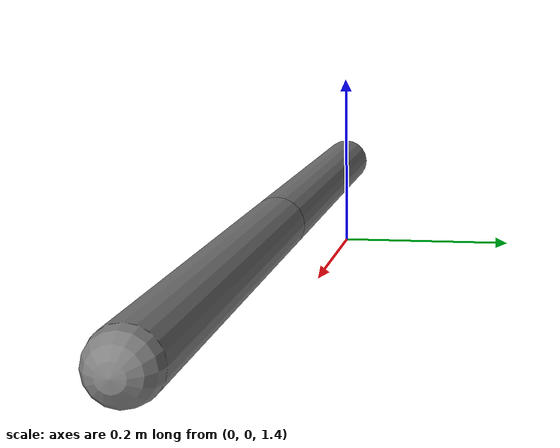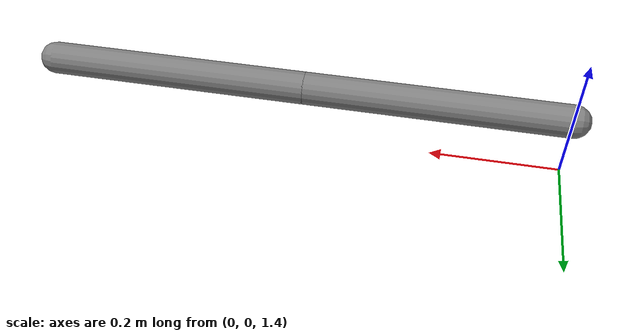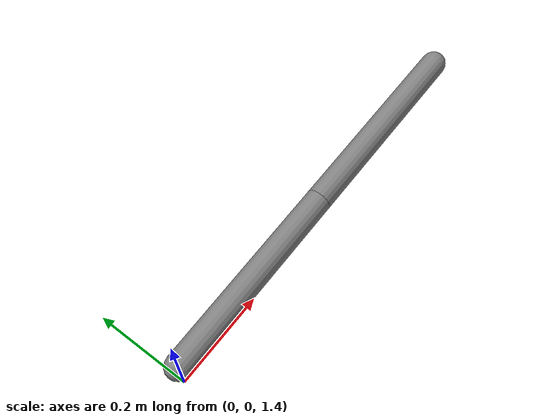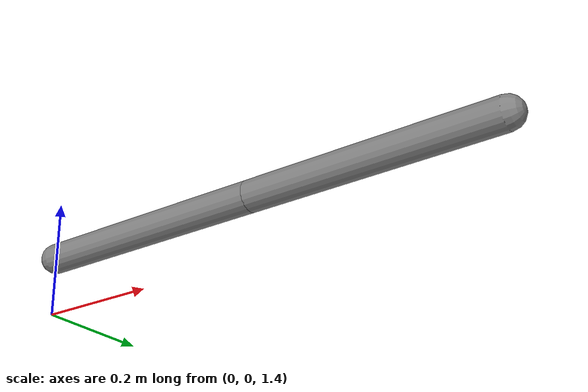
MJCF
<mujoco model="double_pendulum">
  <compiler angle="radian"/>
  <option timestep="0.001" integrator="implicitfast" gravity="0 0 -9.81"/>
  <worldbody>
    <body name="base" pos="0 0 1.5">
      <body name="link1">
        <joint name="joint1" type="hinge" axis="0 1 0" damping="0.01"/>
        <geom type="capsule" fromto="0 0 0 0.4 0 0" size="0.025" mass="0.5"/>
        <body name="link2" pos="0.4 0 0">
          <joint name="joint2" type="hinge" axis="0 1 0" damping="0.01"/>
          <geom type="capsule" fromto="0 0 0 0.4 0 0" size="0.025" mass="0.5"/>
        </body>
      </body>
    </body>
  </worldbody>
</mujoco>
